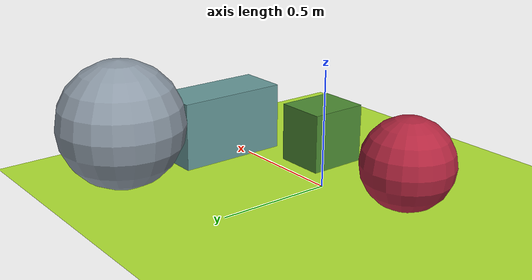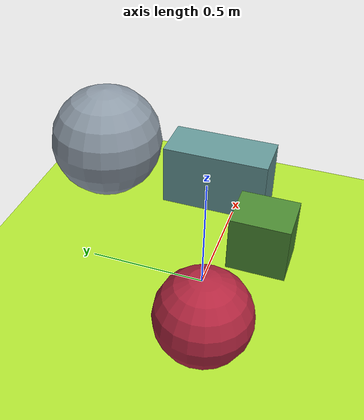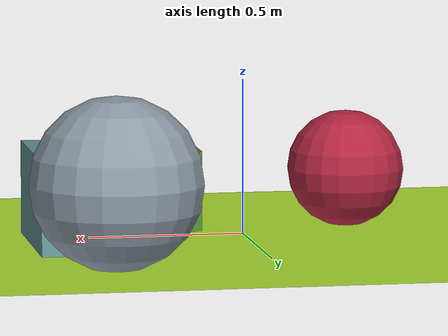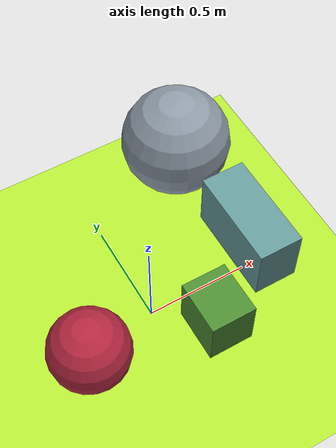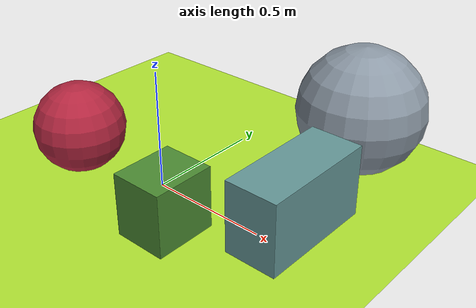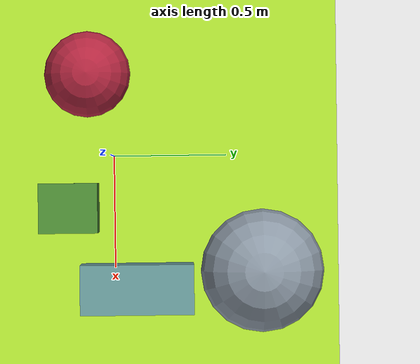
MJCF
<mujoco>
   <asset>
<texture type="skybox" builtin="gradient" rgb1="0.2 0.3 0.7" rgb2="0.5 0.9 0.5" width="256" height="256"/>
<texture name="checker_0" builtin="checker" type="2d" rgb1="0.9 0.9 0.7" rgb2="0.2 0.3 0.6" width="200" height="200"/>
<texture name="gradient_1" builtin="gradient" rgb1="0.3 0.9 0.4" rgb2="0.3 0.2 0.0" width="200" height="200"/>
<texture name="gradient_2" builtin="gradient" rgb1="0.7 0.2 0.4" rgb2="0.7 0.1 0.1" width="200" height="200"/>
<texture name="flat_3" builtin="flat" rgb1="0.4 0.6 0.6" rgb2="0.4 0.6 0.6"  width="200" height="200"/><material name="checker_0_mat" reflectance="0" texrepeat="4 4" texture="checker_0" texuniform="false" />
<material name="gradient_1_mat" reflectance="0" texture="gradient_1" texuniform="true"/>
<material name="gradient_2_mat" reflectance="0" texture="gradient_2" texuniform="true"/>
<material name="flat_3_mat" reflectance="0" texture="flat_3" texuniform="true"/>
   </asset>

   <worldbody>
      <light diffuse=".9 .9 .9" pos="0 0 3" dir="0 0 -1"/>
     <geom type="plane" size="1 1 0.1" rgba="0.7 0.9 0.2 1"/>
<geom type="sphere" pos="0.51 0.65 0.27" size="0.27 0.27 0.27" material="checker_0_mat" />
<geom type="box" pos="0.23 -0.2 0.13" size="0.11 0.13 0.13" material="gradient_1_mat" />
<geom type="sphere" pos="-0.36 -0.11 0.19" size="0.19 0.19 0.19" material="gradient_2_mat" />
<geom type="box" pos="0.59 0.1 0.15" size="0.11 0.25 0.15" material="flat_3_mat" /><camera euler="60 0 180" fovy="60" name="camera_a" pos="0 -1.5 1"></camera>   </worldbody>
</mujoco>
